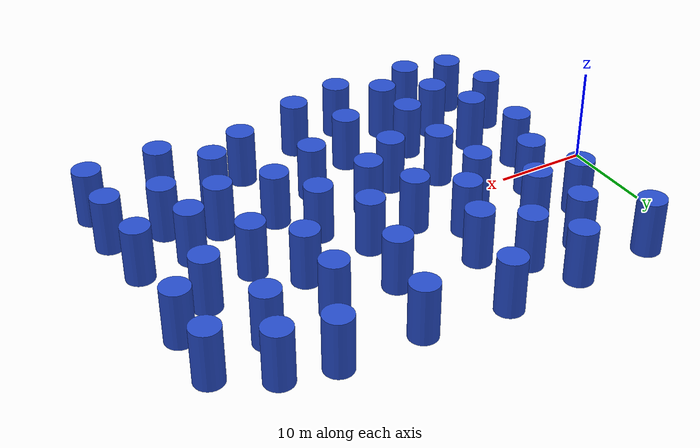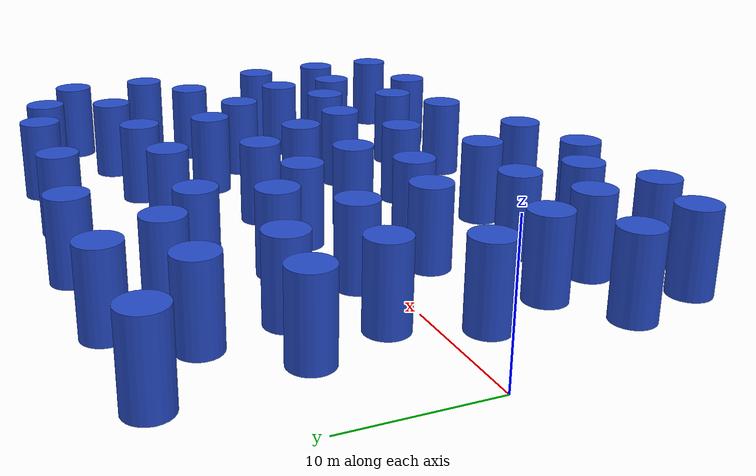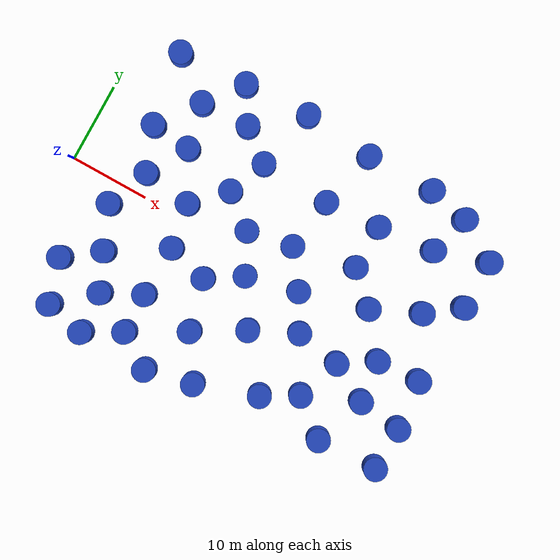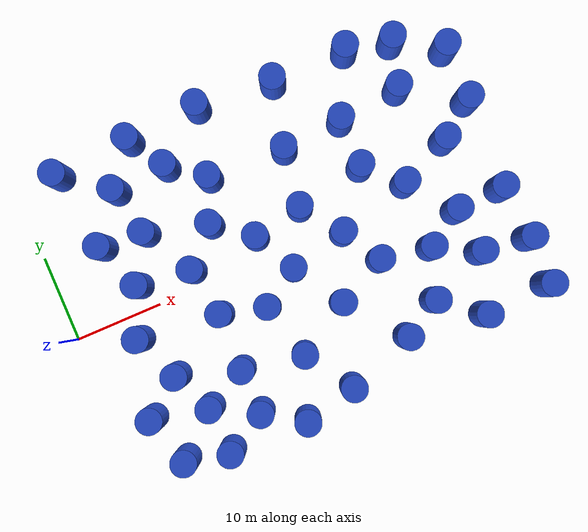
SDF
<sdf version="1.7">
 <world name="default">
  <model name="0">
   <static>1</static>
   <link name="link">
    <inertial>
     <mass>2</mass>
     <inertia><ixx>7.125</ixx><ixy>0</ixy><ixz>0</ixz><iyy>7.125</iyy><iyz>0</iyz><izz>2.25</izz></inertia>
    </inertial>
    <collision name="collision">
     <geometry><cylinder><length>6</length><radius>1.5</radius></cylinder></geometry>
     <surface><contact><collide_without_contact>1</collide_without_contact></contact></surface>
    </collision>
    <visual name="visual">
     <geometry><cylinder><length>6</length><radius>1.5</radius></cylinder></geometry>
     <material>
      <script><uri>file://media/materials/scripts/gazebo.material</uri><name>Gazebo/Blue</name></script>
     </material>
    </visual>
    <gravity>0</gravity>
   </link>
   <pose>45.2954 -8.92008 3 0 -0 0</pose>
  </model>
  <model name="6">
   <static>1</static>
   <link name="link">
    <inertial>
     <mass>2</mass>
     <inertia><ixx>7.125</ixx><ixy>0</ixy><ixz>0</ixz><iyy>7.125</iyy><iyz>0</iyz><izz>2.25</izz></inertia>
    </inertial>
    <collision name="collision">
     <geometry><cylinder><length>6</length><radius>1.5</radius></cylinder></geometry>
     <surface><contact><collide_without_contact>1</collide_without_contact></contact></surface>
    </collision>
    <visual name="visual">
     <geometry><cylinder><length>6</length><radius>1.5</radius></cylinder></geometry>
     <material>
      <script><uri>file://media/materials/scripts/gazebo.material</uri><name>Gazebo/Blue</name></script>
     </material>
    </visual>
    <gravity>0</gravity>
   </link>
   <pose>46.6147 4.10282 3 0 -0 0</pose>
  </model>
  <model name="7">
   <static>1</static>
   <link name="link">
    <inertial>
     <mass>2</mass>
     <inertia><ixx>7.125</ixx><ixy>0</ixy><ixz>0</ixz><iyy>7.125</iyy><iyz>0</iyz><izz>2.25</izz></inertia>
    </inertial>
    <collision name="collision">
     <geometry><cylinder><length>6</length><radius>1.5</radius></cylinder></geometry>
     <surface><contact><collide_without_contact>1</collide_without_contact></contact></surface>
    </collision>
    <visual name="visual">
     <geometry><cylinder><length>6</length><radius>1.5</radius></cylinder></geometry>
     <material>
      <script><uri>file://media/materials/scripts/gazebo.material</uri><name>Gazebo/Blue</name></script>
     </material>
    </visual>
    <gravity>0</gravity>
   </link>
   <pose>50.7699 13.5165 3 0 -0 0</pose>
  </model>
  <model name="11">
   <static>1</static>
   <link name="link">
    <inertial>
     <mass>2</mass>
     <inertia><ixx>7.125</ixx><ixy>0</ixy><ixz>0</ixz><iyy>7.125</iyy><iyz>0</iyz><izz>2.25</izz></inertia>
    </inertial>
    <collision name="collision">
     <geometry><cylinder><length>6</length><radius>1.5</radius></cylinder></geometry>
     <surface><contact><collide_without_contact>1</collide_without_contact></contact></surface>
    </collision>
    <visual name="visual">
     <geometry><cylinder><length>6</length><radius>1.5</radius></cylinder></geometry>
     <material>
      <script><uri>file://media/materials/scripts/gazebo.material</uri><name>Gazebo/Blue</name></script>
     </material>
    </visual>
    <gravity>0</gravity>
   </link>
   <pose>23.0335 2.4979 3 0 -0 0</pose>
  </model>
  <model name="13">
   <static>1</static>
   <link name="link">
    <inertial>
     <mass>2</mass>
     <inertia><ixx>7.125</ixx><ixy>0</ixy><ixz>0</ixz><iyy>7.125</iyy><iyz>0</iyz><izz>2.25</izz></inertia>
    </inertial>
    <collision name="collision">
     <geometry><cylinder><length>6</length><radius>1.5</radius></cylinder></geometry>
     <surface><contact><collide_without_contact>1</collide_without_contact></contact></surface>
    </collision>
    <visual name="visual">
     <geometry><cylinder><length>6</length><radius>1.5</radius></cylinder></geometry>
     <material>
      <script><uri>file://media/materials/scripts/gazebo.material</uri><name>Gazebo/Blue</name></script>
     </material>
    </visual>
    <gravity>0</gravity>
   </link>
   <pose>15.0786 1.89689 3 0 -0 0</pose>
  </model>
  <model name="16">
   <static>1</static>
   <link name="link">
    <inertial>
     <mass>2</mass>
     <inertia><ixx>7.125</ixx><ixy>0</ixy><ixz>0</ixz><iyy>7.125</iyy><iyz>0</iyz><izz>2.25</izz></inertia>
    </inertial>
    <collision name="collision">
     <geometry><cylinder><length>6</length><radius>1.5</radius></cylinder></geometry>
     <surface><contact><collide_without_contact>1</collide_without_contact></contact></surface>
    </collision>
    <visual name="visual">
     <geometry><cylinder><length>6</length><radius>1.5</radius></cylinder></geometry>
     <material>
      <script><uri>file://media/materials/scripts/gazebo.material</uri><name>Gazebo/Blue</name></script>
     </material>
    </visual>
    <gravity>0</gravity>
   </link>
   <pose>22.871 -11.591 3 0 -0 0</pose>
  </model>
  <model name="17">
   <static>1</static>
   <link name="link">
    <inertial>
     <mass>2</mass>
     <inertia><ixx>7.125</ixx><ixy>0</ixy><ixz>0</ixz><iyy>7.125</iyy><iyz>0</iyz><izz>2.25</izz></inertia>
    </inertial>
    <collision name="collision">
     <geometry><cylinder><length>6</length><radius>1.5</radius></cylinder></geometry>
     <surface><contact><collide_without_contact>1</collide_without_contact></contact></surface>
    </collision>
    <visual name="visual">
     <geometry><cylinder><length>6</length><radius>1.5</radius></cylinder></geometry>
     <material>
      <script><uri>file://media/materials/scripts/gazebo.material</uri><name>Gazebo/Blue</name></script>
     </material>
    </visual>
    <gravity>0</gravity>
   </link>
   <pose>50.7235 -15.1765 3 0 -0 0</pose>
  </model>
  <model name="22">
   <static>1</static>
   <link name="link">
    <inertial>
     <mass>2</mass>
     <inertia><ixx>7.125</ixx><ixy>0</ixy><ixz>0</ixz><iyy>7.125</iyy><iyz>0</iyz><izz>2.25</izz></inertia>
    </inertial>
    <collision name="collision">
     <geometry><cylinder><length>6</length><radius>1.5</radius></cylinder></geometry>
     <surface><contact><collide_without_contact>1</collide_without_contact></contact></surface>
    </collision>
    <visual name="visual">
     <geometry><cylinder><length>6</length><radius>1.5</radius></cylinder></geometry>
     <material>
      <script><uri>file://media/materials/scripts/gazebo.material</uri><name>Gazebo/Blue</name></script>
     </material>
    </visual>
    <gravity>0</gravity>
   </link>
   <pose>15.862 -10.343 3 0 -0 0</pose>
  </model>
  <model name="24">
   <static>1</static>
   <link name="link">
    <inertial>
     <mass>2</mass>
     <inertia><ixx>7.125</ixx><ixy>0</ixy><ixz>0</ixz><iyy>7.125</iyy><iyz>0</iyz><izz>2.25</izz></inertia>
    </inertial>
    <collision name="collision">
     <geometry><cylinder><length>6</length><radius>1.5</radius></cylinder></geometry>
     <surface><contact><collide_without_contact>1</collide_without_contact></contact></surface>
    </collision>
    <visual name="visual">
     <geometry><cylinder><length>6</length><radius>1.5</radius></cylinder></geometry>
     <material>
      <script><uri>file://media/materials/scripts/gazebo.material</uri><name>Gazebo/Blue</name></script>
     </material>
    </visual>
    <gravity>0</gravity>
   </link>
   <pose>8.88771 2.73304 3 0 -0 0</pose>
  </model>
  <model name="26">
   <static>1</static>
   <link name="link">
    <inertial>
     <mass>2</mass>
     <inertia><ixx>7.125</ixx><ixy>0</ixy><ixz>0</ixz><iyy>7.125</iyy><iyz>0</iyz><izz>2.25</izz></inertia>
    </inertial>
    <collision name="collision">
     <geometry><cylinder><length>6</length><radius>1.5</radius></cylinder></geometry>
     <surface><contact><collide_without_contact>1</collide_without_contact></contact></surface>
    </collision>
    <visual name="visual">
     <geometry><cylinder><length>6</length><radius>1.5</radius></cylinder></geometry>
     <material>
      <script><uri>file://media/materials/scripts/gazebo.material</uri><name>Gazebo/Blue</name></script>
     </material>
    </visual>
    <gravity>0</gravity>
   </link>
   <pose>40.4036 17.7791 3 0 -0 0</pose>
  </model>
  <model name="28">
   <static>1</static>
   <link name="link">
    <inertial>
     <mass>2</mass>
     <inertia><ixx>7.125</ixx><ixy>0</ixy><ixz>0</ixz><iyy>7.125</iyy><iyz>0</iyz><izz>2.25</izz></inertia>
    </inertial>
    <collision name="collision">
     <geometry><cylinder><length>6</length><radius>1.5</radius></cylinder></geometry>
     <surface><contact><collide_without_contact>1</collide_without_contact></contact></surface>
    </collision>
    <visual name="visual">
     <geometry><cylinder><length>6</length><radius>1.5</radius></cylinder></geometry>
     <material>
      <script><uri>file://media/materials/scripts/gazebo.material</uri><name>Gazebo/Blue</name></script>
     </material>
    </visual>
    <gravity>0</gravity>
   </link>
   <pose>6.70991 -2.7521 3 0 -0 0</pose>
  </model>
  <model name="29">
   <static>1</static>
   <link name="link">
    <inertial>
     <mass>2</mass>
     <inertia><ixx>7.125</ixx><ixy>0</ixy><ixz>0</ixz><iyy>7.125</iyy><iyz>0</iyz><izz>2.25</izz></inertia>
    </inertial>
    <collision name="collision">
     <geometry><cylinder><length>6</length><radius>1.5</radius></cylinder></geometry>
     <surface><contact><collide_without_contact>1</collide_without_contact></contact></surface>
    </collision>
    <visual name="visual">
     <geometry><cylinder><length>6</length><radius>1.5</radius></cylinder></geometry>
     <material>
      <script><uri>file://media/materials/scripts/gazebo.material</uri><name>Gazebo/Blue</name></script>
     </material>
    </visual>
    <gravity>0</gravity>
   </link>
   <pose>38.4785 -11.8282 3 0 -0 0</pose>
  </model>
  <model name="30">
   <static>1</static>
   <link name="link">
    <inertial>
     <mass>2</mass>
     <inertia><ixx>7.125</ixx><ixy>0</ixy><ixz>0</ixz><iyy>7.125</iyy><iyz>0</iyz><izz>2.25</izz></inertia>
    </inertial>
    <collision name="collision">
     <geometry><cylinder><length>6</length><radius>1.5</radius></cylinder></geometry>
     <surface><contact><collide_without_contact>1</collide_without_contact></contact></surface>
    </collision>
    <visual name="visual">
     <geometry><cylinder><length>6</length><radius>1.5</radius></cylinder></geometry>
     <material>
      <script><uri>file://media/materials/scripts/gazebo.material</uri><name>Gazebo/Blue</name></script>
     </material>
    </visual>
    <gravity>0</gravity>
   </link>
   <pose>14.2894 18.0647 3 0 -0 0</pose>
  </model>
  <model name="33">
   <static>1</static>
   <link name="link">
    <inertial>
     <mass>2</mass>
     <inertia><ixx>7.125</ixx><ixy>0</ixy><ixz>0</ixz><iyy>7.125</iyy><iyz>0</iyz><izz>2.25</izz></inertia>
    </inertial>
    <collision name="collision">
     <geometry><cylinder><length>6</length><radius>1.5</radius></cylinder></geometry>
     <surface><contact><collide_without_contact>1</collide_without_contact></contact></surface>
    </collision>
    <visual name="visual">
     <geometry><cylinder><length>6</length><radius>1.5</radius></cylinder></geometry>
     <material>
      <script><uri>file://media/materials/scripts/gazebo.material</uri><name>Gazebo/Blue</name></script>
     </material>
    </visual>
    <gravity>0</gravity>
   </link>
   <pose>28.8167 3.58128 3 0 -0 0</pose>
  </model>
  <model name="34">
   <static>1</static>
   <link name="link">
    <inertial>
     <mass>2</mass>
     <inertia><ixx>7.125</ixx><ixy>0</ixy><ixz>0</ixz><iyy>7.125</iyy><iyz>0</iyz><izz>2.25</izz></inertia>
    </inertial>
    <collision name="collision">
     <geometry><cylinder><length>6</length><radius>1.5</radius></cylinder></geometry>
     <surface><contact><collide_without_contact>1</collide_without_contact></contact></surface>
    </collision>
    <visual name="visual">
     <geometry><cylinder><length>6</length><radius>1.5</radius></cylinder></geometry>
     <material>
      <script><uri>file://media/materials/scripts/gazebo.material</uri><name>Gazebo/Blue</name></script>
     </material>
    </visual>
    <gravity>0</gravity>
   </link>
   <pose>50.2477 -3.3335 3 0 -0 0</pose>
  </model>
  <model name="35">
   <static>1</static>
   <link name="link">
    <inertial>
     <mass>2</mass>
     <inertia><ixx>7.125</ixx><ixy>0</ixy><ixz>0</ixz><iyy>7.125</iyy><iyz>0</iyz><izz>2.25</izz></inertia>
    </inertial>
    <collision name="collision">
     <geometry><cylinder><length>6</length><radius>1.5</radius></cylinder></geometry>
     <surface><contact><collide_without_contact>1</collide_without_contact></contact></surface>
    </collision>
    <visual name="visual">
     <geometry><cylinder><length>6</length><radius>1.5</radius></cylinder></geometry>
     <material>
      <script><uri>file://media/materials/scripts/gazebo.material</uri><name>Gazebo/Blue</name></script>
     </material>
    </visual>
    <gravity>0</gravity>
   </link>
   <pose>34.7103 -5.28539 3 0 -0 0</pose>
  </model>
  <model name="36">
   <static>1</static>
   <link name="link">
    <inertial>
     <mass>2</mass>
     <inertia><ixx>7.125</ixx><ixy>0</ixy><ixz>0</ixz><iyy>7.125</iyy><iyz>0</iyz><izz>2.25</izz></inertia>
    </inertial>
    <collision name="collision">
     <geometry><cylinder><length>6</length><radius>1.5</radius></cylinder></geometry>
     <surface><contact><collide_without_contact>1</collide_without_contact></contact></surface>
    </collision>
    <visual name="visual">
     <geometry><cylinder><length>6</length><radius>1.5</radius></cylinder></geometry>
     <material>
      <script><uri>file://media/materials/scripts/gazebo.material</uri><name>Gazebo/Blue</name></script>
     </material>
    </visual>
    <gravity>0</gravity>
   </link>
   <pose>8.93256 -8.10732 3 0 -0 0</pose>
  </model>
  <model name="38">
   <static>1</static>
   <link name="link">
    <inertial>
     <mass>2</mass>
     <inertia><ixx>7.125</ixx><ixy>0</ixy><ixz>0</ixz><iyy>7.125</iyy><iyz>0</iyz><izz>2.25</izz></inertia>
    </inertial>
    <collision name="collision">
     <geometry><cylinder><length>6</length><radius>1.5</radius></cylinder></geometry>
     <surface><contact><collide_without_contact>1</collide_without_contact></contact></surface>
    </collision>
    <visual name="visual">
     <geometry><cylinder><length>6</length><radius>1.5</radius></cylinder></geometry>
     <material>
      <script><uri>file://media/materials/scripts/gazebo.material</uri><name>Gazebo/Blue</name></script>
     </material>
    </visual>
    <gravity>0</gravity>
   </link>
   <pose>4.64785 -11.3845 3 0 -0 0</pose>
  </model>
  <model name="39">
   <static>1</static>
   <link name="link">
    <inertial>
     <mass>2</mass>
     <inertia><ixx>7.125</ixx><ixy>0</ixy><ixz>0</ixz><iyy>7.125</iyy><iyz>0</iyz><izz>2.25</izz></inertia>
    </inertial>
    <collision name="collision">
     <geometry><cylinder><length>6</length><radius>1.5</radius></cylinder></geometry>
     <surface><contact><collide_without_contact>1</collide_without_contact></contact></surface>
    </collision>
    <visual name="visual">
     <geometry><cylinder><length>6</length><radius>1.5</radius></cylinder></geometry>
     <material>
      <script><uri>file://media/materials/scripts/gazebo.material</uri><name>Gazebo/Blue</name></script>
     </material>
    </visual>
    <gravity>0</gravity>
   </link>
   <pose>44.6974 -3.61612 3 0 -0 0</pose>
  </model>
  <model name="41">
   <static>1</static>
   <link name="link">
    <inertial>
     <mass>2</mass>
     <inertia><ixx>7.125</ixx><ixy>0</ixy><ixz>0</ixz><iyy>7.125</iyy><iyz>0</iyz><izz>2.25</izz></inertia>
    </inertial>
    <collision name="collision">
     <geometry><cylinder><length>6</length><radius>1.5</radius></cylinder></geometry>
     <surface><contact><collide_without_contact>1</collide_without_contact></contact></surface>
    </collision>
    <visual name="visual">
     <geometry><cylinder><length>6</length><radius>1.5</radius></cylinder></geometry>
     <material>
      <script><uri>file://media/materials/scripts/gazebo.material</uri><name>Gazebo/Blue</name></script>
     </material>
    </visual>
    <gravity>0</gravity>
   </link>
   <pose>22.7361 18.4786 3 0 -0 0</pose>
  </model>
  <model name="43">
   <static>1</static>
   <link name="link">
    <inertial>
     <mass>2</mass>
     <inertia><ixx>7.125</ixx><ixy>0</ixy><ixz>0</ixz><iyy>7.125</iyy><iyz>0</iyz><izz>2.25</izz></inertia>
    </inertial>
    <collision name="collision">
     <geometry><cylinder><length>6</length><radius>1.5</radius></cylinder></geometry>
     <surface><contact><collide_without_contact>1</collide_without_contact></contact></surface>
    </collision>
    <visual name="visual">
     <geometry><cylinder><length>6</length><radius>1.5</radius></cylinder></geometry>
     <material>
      <script><uri>file://media/materials/scripts/gazebo.material</uri><name>Gazebo/Blue</name></script>
     </material>
    </visual>
    <gravity>0</gravity>
   </link>
   <pose>31.6583 17.7051 3 0 -0 0</pose>
  </model>
  <model name="44">
   <static>1</static>
   <link name="link">
    <inertial>
     <mass>2</mass>
     <inertia><ixx>7.125</ixx><ixy>0</ixy><ixz>0</ixz><iyy>7.125</iyy><iyz>0</iyz><izz>2.25</izz></inertia>
    </inertial>
    <collision name="collision">
     <geometry><cylinder><length>6</length><radius>1.5</radius></cylinder></geometry>
     <surface><contact><collide_without_contact>1</collide_without_contact></contact></surface>
    </collision>
    <visual name="visual">
     <geometry><cylinder><length>6</length><radius>1.5</radius></cylinder></geometry>
     <material>
      <script><uri>file://media/materials/scripts/gazebo.material</uri><name>Gazebo/Blue</name></script>
     </material>
    </visual>
    <gravity>0</gravity>
   </link>
   <pose>42.9795 -15.4902 3 0 -0 0</pose>
  </model>
  <model name="45">
   <static>1</static>
   <link name="link">
    <inertial>
     <mass>2</mass>
     <inertia><ixx>7.125</ixx><ixy>0</ixy><ixz>0</ixz><iyy>7.125</iyy><iyz>0</iyz><izz>2.25</izz></inertia>
    </inertial>
    <collision name="collision">
     <geometry><cylinder><length>6</length><radius>1.5</radius></cylinder></geometry>
     <surface><contact><collide_without_contact>1</collide_without_contact></contact></surface>
    </collision>
    <visual name="visual">
     <geometry><cylinder><length>6</length><radius>1.5</radius></cylinder></geometry>
     <material>
      <script><uri>file://media/materials/scripts/gazebo.material</uri><name>Gazebo/Blue</name></script>
     </material>
    </visual>
    <gravity>0</gravity>
   </link>
   <pose>6.30171 -16.9955 3 0 -0 0</pose>
  </model>
  <model name="47">
   <static>1</static>
   <link name="link">
    <inertial>
     <mass>2</mass>
     <inertia><ixx>7.125</ixx><ixy>0</ixy><ixz>0</ixz><iyy>7.125</iyy><iyz>0</iyz><izz>2.25</izz></inertia>
    </inertial>
    <collision name="collision">
     <geometry><cylinder><length>6</length><radius>1.5</radius></cylinder></geometry>
     <surface><contact><collide_without_contact>1</collide_without_contact></contact></surface>
    </collision>
    <visual name="visual">
     <geometry><cylinder><length>6</length><radius>1.5</radius></cylinder></geometry>
     <material>
      <script><uri>file://media/materials/scripts/gazebo.material</uri><name>Gazebo/Blue</name></script>
     </material>
    </visual>
    <gravity>0</gravity>
   </link>
   <pose>40.6276 1.40336 3 0 -0 0</pose>
  </model>
  <model name="48">
   <static>1</static>
   <link name="link">
    <inertial>
     <mass>2</mass>
     <inertia><ixx>7.125</ixx><ixy>0</ixy><ixz>0</ixz><iyy>7.125</iyy><iyz>0</iyz><izz>2.25</izz></inertia>
    </inertial>
    <collision name="collision">
     <geometry><cylinder><length>6</length><radius>1.5</radius></cylinder></geometry>
     <surface><contact><collide_without_contact>1</collide_without_contact></contact></surface>
    </collision>
    <visual name="visual">
     <geometry><cylinder><length>6</length><radius>1.5</radius></cylinder></geometry>
     <material>
      <script><uri>file://media/materials/scripts/gazebo.material</uri><name>Gazebo/Blue</name></script>
     </material>
    </visual>
    <gravity>0</gravity>
   </link>
   <pose>36.8406 10.7161 3 0 -0 0</pose>
  </model>
  <model name="50">
   <static>1</static>
   <link name="link">
    <inertial>
     <mass>2</mass>
     <inertia><ixx>7.125</ixx><ixy>0</ixy><ixz>0</ixz><iyy>7.125</iyy><iyz>0</iyz><izz>2.25</izz></inertia>
    </inertial>
    <collision name="collision">
     <geometry><cylinder><length>6</length><radius>1.5</radius></cylinder></geometry>
     <surface><contact><collide_without_contact>1</collide_without_contact></contact></surface>
    </collision>
    <visual name="visual">
     <geometry><cylinder><length>6</length><radius>1.5</radius></cylinder></geometry>
     <material>
      <script><uri>file://media/materials/scripts/gazebo.material</uri><name>Gazebo/Blue</name></script>
     </material>
    </visual>
    <gravity>0</gravity>
   </link>
   <pose>50.8723 -9.63087 3 0 -0 0</pose>
  </model>
  <model name="53">
   <static>1</static>
   <link name="link">
    <inertial>
     <mass>2</mass>
     <inertia><ixx>7.125</ixx><ixy>0</ixy><ixz>0</ixz><iyy>7.125</iyy><iyz>0</iyz><izz>2.25</izz></inertia>
    </inertial>
    <collision name="collision">
     <geometry><cylinder><length>6</length><radius>1.5</radius></cylinder></geometry>
     <surface><contact><collide_without_contact>1</collide_without_contact></contact></surface>
    </collision>
    <visual name="visual">
     <geometry><cylinder><length>6</length><radius>1.5</radius></cylinder></geometry>
     <material>
      <script><uri>file://media/materials/scripts/gazebo.material</uri><name>Gazebo/Blue</name></script>
     </material>
    </visual>
    <gravity>0</gravity>
   </link>
   <pose>29.8089 10.2527 3 0 -0 0</pose>
  </model>
  <model name="54">
   <static>1</static>
   <link name="link">
    <inertial>
     <mass>2</mass>
     <inertia><ixx>7.125</ixx><ixy>0</ixy><ixz>0</ixz><iyy>7.125</iyy><iyz>0</iyz><izz>2.25</izz></inertia>
    </inertial>
    <collision name="collision">
     <geometry><cylinder><length>6</length><radius>1.5</radius></cylinder></geometry>
     <surface><contact><collide_without_contact>1</collide_without_contact></contact></surface>
    </collision>
    <visual name="visual">
     <geometry><cylinder><length>6</length><radius>1.5</radius></cylinder></geometry>
     <material>
      <script><uri>file://media/materials/scripts/gazebo.material</uri><name>Gazebo/Blue</name></script>
     </material>
    </visual>
    <gravity>0</gravity>
   </link>
   <pose>10.6942 13.4524 3 0 -0 0</pose>
  </model>
  <model name="55">
   <static>1</static>
   <link name="link">
    <inertial>
     <mass>2</mass>
     <inertia><ixx>7.125</ixx><ixy>0</ixy><ixz>0</ixz><iyy>7.125</iyy><iyz>0</iyz><izz>2.25</izz></inertia>
    </inertial>
    <collision name="collision">
     <geometry><cylinder><length>6</length><radius>1.5</radius></cylinder></geometry>
     <surface><contact><collide_without_contact>1</collide_without_contact></contact></surface>
    </collision>
    <visual name="visual">
     <geometry><cylinder><length>6</length><radius>1.5</radius></cylinder></geometry>
     <material>
      <script><uri>file://media/materials/scripts/gazebo.material</uri><name>Gazebo/Blue</name></script>
     </material>
    </visual>
    <gravity>0</gravity>
   </link>
   <pose>16.0343 -3.77572 3 0 -0 0</pose>
  </model>
  <model name="58">
   <static>1</static>
   <link name="link">
    <inertial>
     <mass>2</mass>
     <inertia><ixx>7.125</ixx><ixy>0</ixy><ixz>0</ixz><iyy>7.125</iyy><iyz>0</iyz><izz>2.25</izz></inertia>
    </inertial>
    <collision name="collision">
     <geometry><cylinder><length>6</length><radius>1.5</radius></cylinder></geometry>
     <surface><contact><collide_without_contact>1</collide_without_contact></contact></surface>
    </collision>
    <visual name="visual">
     <geometry><cylinder><length>6</length><radius>1.5</radius></cylinder></geometry>
     <material>
      <script><uri>file://media/materials/scripts/gazebo.material</uri><name>Gazebo/Blue</name></script>
     </material>
    </visual>
    <gravity>0</gravity>
   </link>
   <pose>26.3338 -16.9966 3 0 -0 0</pose>
  </model>
  <model name="59">
   <static>1</static>
   <link name="link">
    <inertial>
     <mass>2</mass>
     <inertia><ixx>7.125</ixx><ixy>0</ixy><ixz>0</ixz><iyy>7.125</iyy><iyz>0</iyz><izz>2.25</izz></inertia>
    </inertial>
    <collision name="collision">
     <geometry><cylinder><length>6</length><radius>1.5</radius></cylinder></geometry>
     <surface><contact><collide_without_contact>1</collide_without_contact></contact></surface>
    </collision>
    <visual name="visual">
     <geometry><cylinder><length>6</length><radius>1.5</radius></cylinder></geometry>
     <material>
      <script><uri>file://media/materials/scripts/gazebo.material</uri><name>Gazebo/Blue</name></script>
     </material>
    </visual>
    <gravity>0</gravity>
   </link>
   <pose>18.9355 5.7751 3 0 -0 0</pose>
  </model>
  <model name="62">
   <static>1</static>
   <link name="link">
    <inertial>
     <mass>2</mass>
     <inertia><ixx>7.125</ixx><ixy>0</ixy><ixz>0</ixz><iyy>7.125</iyy><iyz>0</iyz><izz>2.25</izz></inertia>
    </inertial>
    <collision name="collision">
     <geometry><cylinder><length>6</length><radius>1.5</radius></cylinder></geometry>
     <surface><contact><collide_without_contact>1</collide_without_contact></contact></surface>
    </collision>
    <visual name="visual">
     <geometry><cylinder><length>6</length><radius>1.5</radius></cylinder></geometry>
     <material>
      <script><uri>file://media/materials/scripts/gazebo.material</uri><name>Gazebo/Blue</name></script>
     </material>
    </visual>
    <gravity>0</gravity>
   </link>
   <pose>44.0831 11.4714 3 0 -0 0</pose>
  </model>
  <model name="64">
   <static>1</static>
   <link name="link">
    <inertial>
     <mass>2</mass>
     <inertia><ixx>7.125</ixx><ixy>0</ixy><ixz>0</ixz><iyy>7.125</iyy><iyz>0</iyz><izz>2.25</izz></inertia>
    </inertial>
    <collision name="collision">
     <geometry><cylinder><length>6</length><radius>1.5</radius></cylinder></geometry>
     <surface><contact><collide_without_contact>1</collide_without_contact></contact></surface>
    </collision>
    <visual name="visual">
     <geometry><cylinder><length>6</length><radius>1.5</radius></cylinder></geometry>
     <material>
      <script><uri>file://media/materials/scripts/gazebo.material</uri><name>Gazebo/Blue</name></script>
     </material>
    </visual>
    <gravity>0</gravity>
   </link>
   <pose>34.1152 -14.3025 3 0 -0 0</pose>
  </model>
  <model name="66">
   <static>1</static>
   <link name="link">
    <inertial>
     <mass>2</mass>
     <inertia><ixx>7.125</ixx><ixy>0</ixy><ixz>0</ixz><iyy>7.125</iyy><iyz>0</iyz><izz>2.25</izz></inertia>
    </inertial>
    <collision name="collision">
     <geometry><cylinder><length>6</length><radius>1.5</radius></cylinder></geometry>
     <surface><contact><collide_without_contact>1</collide_without_contact></contact></surface>
    </collision>
    <visual name="visual">
     <geometry><cylinder><length>6</length><radius>1.5</radius></cylinder></geometry>
     <material>
      <script><uri>file://media/materials/scripts/gazebo.material</uri><name>Gazebo/Blue</name></script>
     </material>
    </visual>
    <gravity>0</gravity>
   </link>
   <pose>5.46653 17.55 3 0 -0 0</pose>
  </model>
  <model name="70">
   <static>1</static>
   <link name="link">
    <inertial>
     <mass>2</mass>
     <inertia><ixx>7.125</ixx><ixy>0</ixy><ixz>0</ixz><iyy>7.125</iyy><iyz>0</iyz><izz>2.25</izz></inertia>
    </inertial>
    <collision name="collision">
     <geometry><cylinder><length>6</length><radius>1.5</radius></cylinder></geometry>
     <surface><contact><collide_without_contact>1</collide_without_contact></contact></surface>
    </collision>
    <visual name="visual">
     <geometry><cylinder><length>6</length><radius>1.5</radius></cylinder></geometry>
     <material>
      <script><uri>file://media/materials/scripts/gazebo.material</uri><name>Gazebo/Blue</name></script>
     </material>
    </visual>
    <gravity>0</gravity>
   </link>
   <pose>29.003 -8.01433 3 0 -0 0</pose>
  </model>
  <model name="71">
   <static>1</static>
   <link name="link">
    <inertial>
     <mass>2</mass>
     <inertia><ixx>7.125</ixx><ixy>0</ixy><ixz>0</ixz><iyy>7.125</iyy><iyz>0</iyz><izz>2.25</izz></inertia>
    </inertial>
    <collision name="collision">
     <geometry><cylinder><length>6</length><radius>1.5</radius></cylinder></geometry>
     <surface><contact><collide_without_contact>1</collide_without_contact></contact></surface>
    </collision>
    <visual name="visual">
     <geometry><cylinder><length>6</length><radius>1.5</radius></cylinder></geometry>
     <material>
      <script><uri>file://media/materials/scripts/gazebo.material</uri><name>Gazebo/Blue</name></script>
     </material>
    </visual>
    <gravity>0</gravity>
   </link>
   <pose>50.7414 7.20374 3 0 -0 0</pose>
  </model>
  <model name="72">
   <static>1</static>
   <link name="link">
    <inertial>
     <mass>2</mass>
     <inertia><ixx>7.125</ixx><ixy>0</ixy><ixz>0</ixz><iyy>7.125</iyy><iyz>0</iyz><izz>2.25</izz></inertia>
    </inertial>
    <collision name="collision">
     <geometry><cylinder><length>6</length><radius>1.5</radius></cylinder></geometry>
     <surface><contact><collide_without_contact>1</collide_without_contact></contact></surface>
    </collision>
    <visual name="visual">
     <geometry><cylinder><length>6</length><radius>1.5</radius></cylinder></geometry>
     <material>
      <script><uri>file://media/materials/scripts/gazebo.material</uri><name>Gazebo/Blue</name></script>
     </material>
    </visual>
    <gravity>0</gravity>
   </link>
   <pose>20.2972 -18.3566 3 0 -0 0</pose>
  </model>
  <model name="73">
   <static>1</static>
   <link name="link">
    <inertial>
     <mass>2</mass>
     <inertia><ixx>7.125</ixx><ixy>0</ixy><ixz>0</ixz><iyy>7.125</iyy><iyz>0</iyz><izz>2.25</izz></inertia>
    </inertial>
    <collision name="collision">
     <geometry><cylinder><length>6</length><radius>1.5</radius></cylinder></geometry>
     <surface><contact><collide_without_contact>1</collide_without_contact></contact></surface>
    </collision>
    <visual name="visual">
     <geometry><cylinder><length>6</length><radius>1.5</radius></cylinder></geometry>
     <material>
      <script><uri>file://media/materials/scripts/gazebo.material</uri><name>Gazebo/Blue</name></script>
     </material>
    </visual>
    <gravity>0</gravity>
   </link>
   <pose>15.958 -15.4854 3 0 -0 0</pose>
  </model>
  <model name="74">
   <static>1</static>
   <link name="link">
    <inertial>
     <mass>2</mass>
     <inertia><ixx>7.125</ixx><ixy>0</ixy><ixz>0</ixz><iyy>7.125</iyy><iyz>0</iyz><izz>2.25</izz></inertia>
    </inertial>
    <collision name="collision">
     <geometry><cylinder><length>6</length><radius>1.5</radius></cylinder></geometry>
     <surface><contact><collide_without_contact>1</collide_without_contact></contact></surface>
    </collision>
    <visual name="visual">
     <geometry><cylinder><length>6</length><radius>1.5</radius></cylinder></geometry>
     <material>
      <script><uri>file://media/materials/scripts/gazebo.material</uri><name>Gazebo/Blue</name></script>
     </material>
    </visual>
    <gravity>0</gravity>
   </link>
   <pose>16.9243 13.7304 3 0 -0 0</pose>
  </model>
  <model name="76">
   <static>1</static>
   <link name="link">
    <inertial>
     <mass>2</mass>
     <inertia><ixx>7.125</ixx><ixy>0</ixy><ixz>0</ixz><iyy>7.125</iyy><iyz>0</iyz><izz>2.25</izz></inertia>
    </inertial>
    <collision name="collision">
     <geometry><cylinder><length>6</length><radius>1.5</radius></cylinder></geometry>
     <surface><contact><collide_without_contact>1</collide_without_contact></contact></surface>
    </collision>
    <visual name="visual">
     <geometry><cylinder><length>6</length><radius>1.5</radius></cylinder></geometry>
     <material>
      <script><uri>file://media/materials/scripts/gazebo.material</uri><name>Gazebo/Blue</name></script>
     </material>
    </visual>
    <gravity>0</gravity>
   </link>
   <pose>25.5029 -2.39711 3 0 -0 0</pose>
  </model>
  <model name="77">
   <static>1</static>
   <link name="link">
    <inertial>
     <mass>2</mass>
     <inertia><ixx>7.125</ixx><ixy>0</ixy><ixz>0</ixz><iyy>7.125</iyy><iyz>0</iyz><izz>2.25</izz></inertia>
    </inertial>
    <collision name="collision">
     <geometry><cylinder><length>6</length><radius>1.5</radius></cylinder></geometry>
     <surface><contact><collide_without_contact>1</collide_without_contact></contact></surface>
    </collision>
    <visual name="visual">
     <geometry><cylinder><length>6</length><radius>1.5</radius></cylinder></geometry>
     <material>
      <script><uri>file://media/materials/scripts/gazebo.material</uri><name>Gazebo/Blue</name></script>
     </material>
    </visual>
    <gravity>0</gravity>
   </link>
   <pose>20.8779 10.6442 3 0 -0 0</pose>
  </model>
  <model name="79">
   <static>1</static>
   <link name="link">
    <inertial>
     <mass>2</mass>
     <inertia><ixx>7.125</ixx><ixy>0</ixy><ixz>0</ixz><iyy>7.125</iyy><iyz>0</iyz><izz>2.25</izz></inertia>
    </inertial>
    <collision name="collision">
     <geometry><cylinder><length>6</length><radius>1.5</radius></cylinder></geometry>
     <surface><contact><collide_without_contact>1</collide_without_contact></contact></surface>
    </collision>
    <visual name="visual">
     <geometry><cylinder><length>6</length><radius>1.5</radius></cylinder></geometry>
     <material>
      <script><uri>file://media/materials/scripts/gazebo.material</uri><name>Gazebo/Blue</name></script>
     </material>
    </visual>
    <gravity>0</gravity>
   </link>
   <pose>45.6163 16.6422 3 0 -0 0</pose>
  </model>
  <model name="83">
   <static>1</static>
   <link name="link">
    <inertial>
     <mass>2</mass>
     <inertia><ixx>7.125</ixx><ixy>0</ixy><ixz>0</ixz><iyy>7.125</iyy><iyz>0</iyz><izz>2.25</izz></inertia>
    </inertial>
    <collision name="collision">
     <geometry><cylinder><length>6</length><radius>1.5</radius></cylinder></geometry>
     <surface><contact><collide_without_contact>1</collide_without_contact></contact></surface>
    </collision>
    <visual name="visual">
     <geometry><cylinder><length>6</length><radius>1.5</radius></cylinder></geometry>
     <material>
      <script><uri>file://media/materials/scripts/gazebo.material</uri><name>Gazebo/Blue</name></script>
     </material>
    </visual>
    <gravity>0</gravity>
   </link>
   <pose>11.8884 7.79848 3 0 -0 0</pose>
  </model>
  <model name="87">
   <static>1</static>
   <link name="link">
    <inertial>
     <mass>2</mass>
     <inertia><ixx>7.125</ixx><ixy>0</ixy><ixz>0</ixz><iyy>7.125</iyy><iyz>0</iyz><izz>2.25</izz></inertia>
    </inertial>
    <collision name="collision">
     <geometry><cylinder><length>6</length><radius>1.5</radius></cylinder></geometry>
     <surface><contact><collide_without_contact>1</collide_without_contact></contact></surface>
    </collision>
    <visual name="visual">
     <geometry><cylinder><length>6</length><radius>1.5</radius></cylinder></geometry>
     <material>
      <script><uri>file://media/materials/scripts/gazebo.material</uri><name>Gazebo/Blue</name></script>
     </material>
    </visual>
    <gravity>0</gravity>
   </link>
   <pose>6.81982 8.2663 3 0 -0 0</pose>
  </model>
  <model name="91">
   <static>1</static>
   <link name="link">
    <inertial>
     <mass>2</mass>
     <inertia><ixx>7.125</ixx><ixy>0</ixy><ixz>0</ixz><iyy>7.125</iyy><iyz>0</iyz><izz>2.25</izz></inertia>
    </inertial>
    <collision name="collision">
     <geometry><cylinder><length>6</length><radius>1.5</radius></cylinder></geometry>
     <surface><contact><collide_without_contact>1</collide_without_contact></contact></surface>
    </collision>
    <visual name="visual">
     <geometry><cylinder><length>6</length><radius>1.5</radius></cylinder></geometry>
     <material>
      <script><uri>file://media/materials/scripts/gazebo.material</uri><name>Gazebo/Blue</name></script>
     </material>
    </visual>
    <gravity>0</gravity>
   </link>
   <pose>11.3059 -18.1206 3 0 -0 0</pose>
  </model>
  <model name="92">
   <static>1</static>
   <link name="link">
    <inertial>
     <mass>2</mass>
     <inertia><ixx>7.125</ixx><ixy>0</ixy><ixz>0</ixz><iyy>7.125</iyy><iyz>0</iyz><izz>2.25</izz></inertia>
    </inertial>
    <collision name="collision">
     <geometry><cylinder><length>6</length><radius>1.5</radius></cylinder></geometry>
     <surface><contact><collide_without_contact>1</collide_without_contact></contact></surface>
    </collision>
    <visual name="visual">
     <geometry><cylinder><length>6</length><radius>1.5</radius></cylinder></geometry>
     <material>
      <script><uri>file://media/materials/scripts/gazebo.material</uri><name>Gazebo/Blue</name></script>
     </material>
    </visual>
    <gravity>0</gravity>
   </link>
   <pose>36.7871 5.0783 3 0 -0 0</pose>
  </model>
  <model name="93">
   <static>1</static>
   <link name="link">
    <inertial>
     <mass>2</mass>
     <inertia><ixx>7.125</ixx><ixy>0</ixy><ixz>0</ixz><iyy>7.125</iyy><iyz>0</iyz><izz>2.25</izz></inertia>
    </inertial>
    <collision name="collision">
     <geometry><cylinder><length>6</length><radius>1.5</radius></cylinder></geometry>
     <surface><contact><collide_without_contact>1</collide_without_contact></contact></surface>
    </collision>
    <visual name="visual">
     <geometry><cylinder><length>6</length><radius>1.5</radius></cylinder></geometry>
     <material>
      <script><uri>file://media/materials/scripts/gazebo.material</uri><name>Gazebo/Blue</name></script>
     </material>
    </visual>
    <gravity>0</gravity>
   </link>
   <pose>40.4502 -6.29612 3 0 -0 0</pose>
  </model>
  <model name="95">
   <static>1</static>
   <link name="link">
    <inertial>
     <mass>2</mass>
     <inertia><ixx>7.125</ixx><ixy>0</ixy><ixz>0</ixz><iyy>7.125</iyy><iyz>0</iyz><izz>2.25</izz></inertia>
    </inertial>
    <collision name="collision">
     <geometry><cylinder><length>6</length><radius>1.5</radius></cylinder></geometry>
     <surface><contact><collide_without_contact>1</collide_without_contact></contact></surface>
    </collision>
    <visual name="visual">
     <geometry><cylinder><length>6</length><radius>1.5</radius></cylinder></geometry>
     <material>
      <script><uri>file://media/materials/scripts/gazebo.material</uri><name>Gazebo/Blue</name></script>
     </material>
    </visual>
    <gravity>0</gravity>
   </link>
   <pose>32.1189 -0.883466 3 0 -0 0</pose>
  </model>
  <model name="96">
   <static>1</static>
   <link name="link">
    <inertial>
     <mass>2</mass>
     <inertia><ixx>7.125</ixx><ixy>0</ixy><ixz>0</ixz><iyy>7.125</iyy><iyz>0</iyz><izz>2.25</izz></inertia>
    </inertial>
    <collision name="collision">
     <geometry><cylinder><length>6</length><radius>1.5</radius></cylinder></geometry>
     <surface><contact><collide_without_contact>1</collide_without_contact></contact></surface>
    </collision>
    <visual name="visual">
     <geometry><cylinder><length>6</length><radius>1.5</radius></cylinder></geometry>
     <material>
      <script><uri>file://media/materials/scripts/gazebo.material</uri><name>Gazebo/Blue</name></script>
     </material>
    </visual>
    <gravity>0</gravity>
   </link>
   <pose>21.1807 -5.1543 3 0 -0 0</pose>
  </model>
  <model name="99">
   <static>1</static>
   <link name="link">
    <inertial>
     <mass>2</mass>
     <inertia><ixx>7.125</ixx><ixy>0</ixy><ixz>0</ixz><iyy>7.125</iyy><iyz>0</iyz><izz>2.25</izz></inertia>
    </inertial>
    <collision name="collision">
     <geometry><cylinder><length>6</length><radius>1.5</radius></cylinder></geometry>
     <surface><contact><collide_without_contact>1</collide_without_contact></contact></surface>
    </collision>
    <visual name="visual">
     <geometry><cylinder><length>6</length><radius>1.5</radius></cylinder></geometry>
     <material>
      <script><uri>file://media/materials/scripts/gazebo.material</uri><name>Gazebo/Blue</name></script>
     </material>
    </visual>
    <gravity>0</gravity>
   </link>
   <pose>11.0197 -12.7971 3 0 -0 0</pose>
  </model>
 </world>
</sdf>
